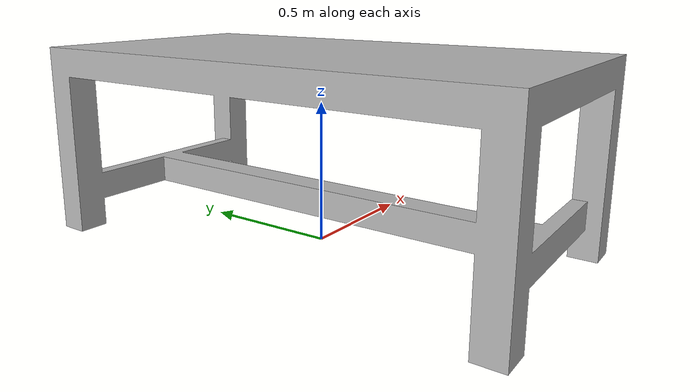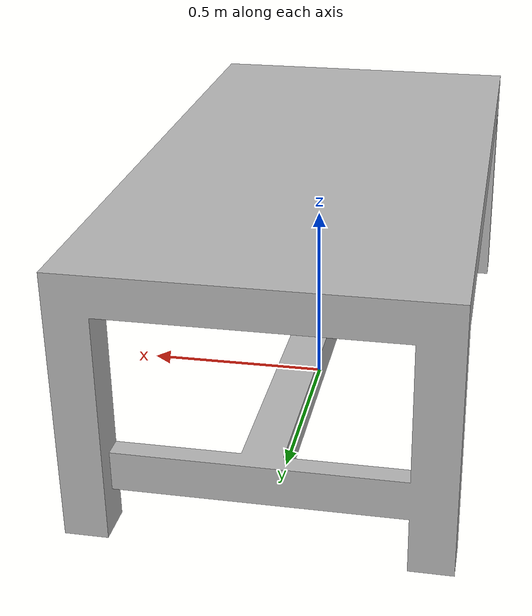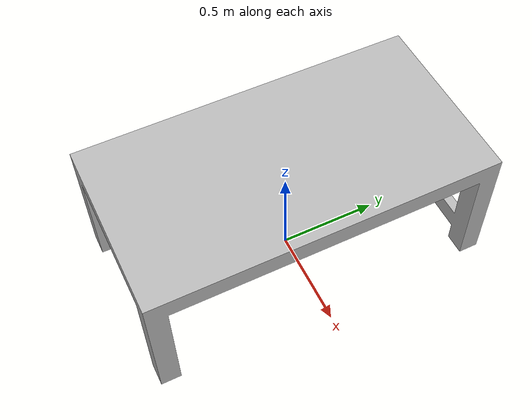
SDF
<?xml version="1.0" ?>
<sdf version="1.5">
  <model name="Table">
    <link name="link">
      <pose>0 0 0 0 0 1.57</pose>

        <visual name="visual">
          <geometry>
            <mesh><uri>model://Table/meshes/table.obj</uri></mesh>
          </geometry>
        </visual>

        <collision name="collision">
          <geometry>
            <mesh><uri>model://Table/meshes/table.obj</uri></mesh>
          </geometry>
        </collision>

    </link>
  </model>
</sdf>
